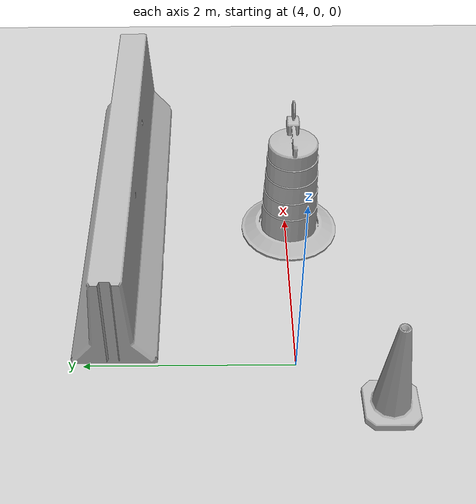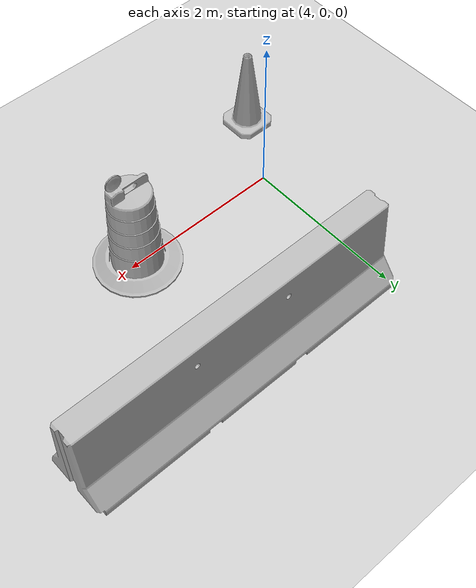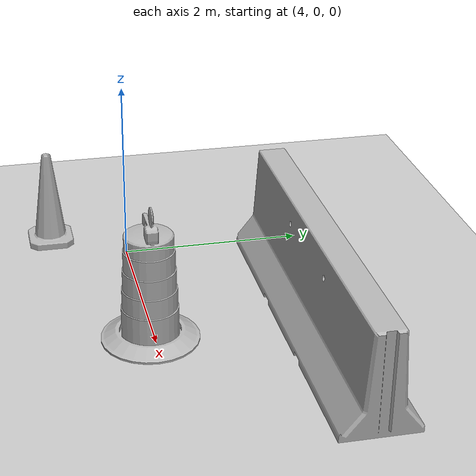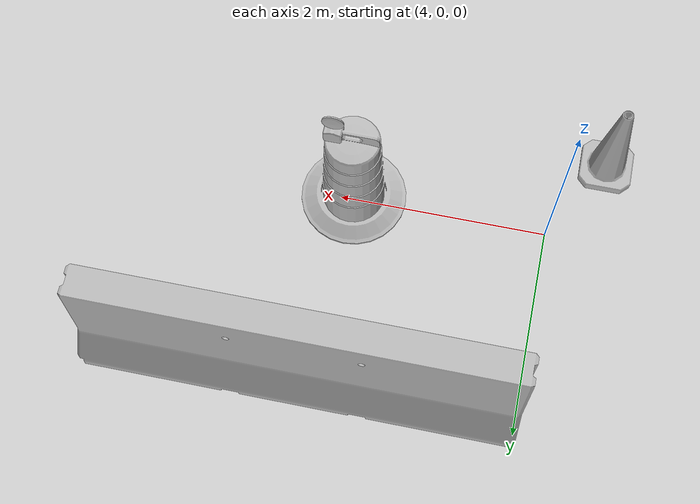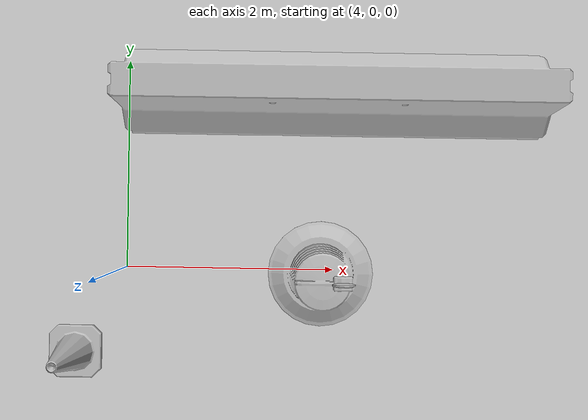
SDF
<sdf version="1.5">
 <world name="default">
  <light name="sun" type="directional">
   <pose>0 0 10 0 -0 0</pose>
   <diffuse>0.8 0.8 0.8 1</diffuse>
   <specular>0.2 0.2 0.2 1</specular>
   <attenuation>
    <range>1000</range>
    <constant>0.9</constant>
    <linear>0.01</linear>
    <quadratic>0.001</quadratic>
   </attenuation>
   <direction>-0.5 0.1 -0.9</direction>
   <spot><inner_angle>0</inner_angle><outer_angle>0</outer_angle><falloff>0</falloff></spot>
  </light>
  <model name="ground_plane">
   <static>1</static>
   <link name="link">
    <collision name="collision">
     <geometry><plane><normal>0 0 1</normal><size>100 100</size></plane></geometry>
     <surface>
      <bounce>100000</bounce>
      <friction>
       <ode><bounce>100000</bounce><mu>50</mu><mu2>50</mu2><slip>0</slip><slip>0</slip><fdir1>0 0 0</fdir1></ode>
      </friction>
     </surface>
     <max_contacts>100</max_contacts>
    </collision>
    <visual name="visual">
     <cast_shadows>0</cast_shadows>
     <geometry><plane><normal>0 0 1</normal><size>100 100</size></plane></geometry>
     <material>
      <script><uri>file://media/materials/scripts/gazebo.material</uri><name>Gazebo/Grey</name></script>
     </material>
    </visual>
   </link>
  </model>
  <gravity>0 0 -9.8</gravity>
  <magnetic_field>6e-06 2.3e-05 -4.2e-05</magnetic_field>
  <atmosphere type="adiabatic"/>
  <physics type="ode">
   <max_step_size>0.001</max_step_size>
   <real_time_factor>1</real_time_factor>
   <real_time_update_rate>1000</real_time_update_rate>
  </physics>
  <scene><ambient>0.4 0.4 0.4 1</ambient><background>0.7 0.7 0.7 1</background><shadows>1</shadows></scene>
  <spherical_coordinates>
   <surface_model>EARTH_WGS84</surface_model>
   <latitude_deg>0</latitude_deg>
   <longitude_deg>0</longitude_deg>
   <elevation>0</elevation>
   <heading_deg>0</heading_deg>
  </spherical_coordinates>
  <model name="jersey_barrier">
   <static>1</static>
   <link name="link">
    <visual name="visual">
     <geometry><mesh><uri>model://jersey_barrier/meshes/jersey_barrier.dae</uri></mesh></geometry>
    </visual>
    <collision name="upright">
     <pose>0 0 0.5715 0 -0 0</pose>
     <geometry><box><size>4.06542 0.3063 1.143</size></box></geometry>
    </collision>
    <collision name="base">
     <pose>0 0 0.032258 0 -0 0</pose>
     <geometry><box><size>4.06542 0.8107 0.064516</size></box></geometry>
    </collision>
    <collision name="base2">
     <pose>0 0 0.1 0 -0 0</pose>
     <geometry><box><size>4.06542 0.65 0.1</size></box></geometry>
    </collision>
    <collision name="base3">
     <pose>0 0 0.2 0 -0 0</pose>
     <geometry><box><size>4.06542 0.5 0.1</size></box></geometry>
    </collision>
    <collision name="left-angle">
     <pose>0 -0.224 0.2401 0.9 -0 0</pose>
     <geometry><box><size>4.06542 0.5 0.064516</size></box></geometry>
    </collision>
    <collision name="right-angle">
     <pose>0 0.224 0.2401 -0.9 0 0</pose>
     <geometry><box><size>4.06542 0.5 0.064516</size></box></geometry>
    </collision>
   </link>
   <pose>6.00612 1.70833 0 0 -0 0</pose>
  </model>
  <model name="Construction Barrel">
   <link name="link">
    <inertial>
     <pose>0 0 0.4 0 -0 0</pose>
     <mass>500</mass>
     <inertia><ixx>51.2096</ixx><iyy>51.2096</iyy><izz>25</izz><ixy>0</ixy><ixz>0</ixz><iyz>0</iyz></inertia>
    </inertial>
    <collision name="collision">
     <geometry><mesh><uri>model://construction_barrel/meshes/construction_barrel.dae</uri></mesh></geometry>
    </collision>
    <visual name="visual">
     <geometry><mesh><uri>model://construction_barrel/meshes/construction_barrel.dae</uri></mesh></geometry>
    </visual>
   </link>
   <pose>5.88278 -0.038281 0 0 0 -3e-06</pose>
  </model>
  <model name="Construction Cone">
   <link name="link">
    <collision name="collision">
     <geometry>
      <mesh><scale>10 10 10</scale><uri>model://construction_cone/meshes/construction_cone.dae</uri></mesh>
     </geometry>
    </collision>
    <visual name="visual">
     <geometry>
      <mesh><scale>10 10 10</scale><uri>model://construction_cone/meshes/construction_cone.dae</uri></mesh>
     </geometry>
    </visual>
    <inertial>
     <inertia><ixx>1</ixx><ixy>0</ixy><ixz>0</ixz><iyy>1</iyy><iyz>0</iyz><izz>1</izz></inertia>
     <mass>1</mass>
    </inertial>
   </link>
   <pose>3.51442 -0.825176 -0 0 -1e-06 0</pose>
  </model>
 </world>
</sdf>
